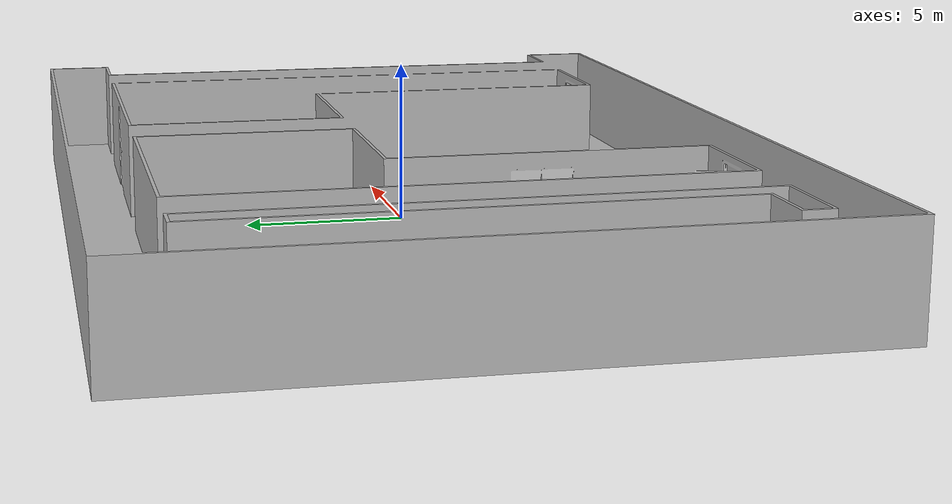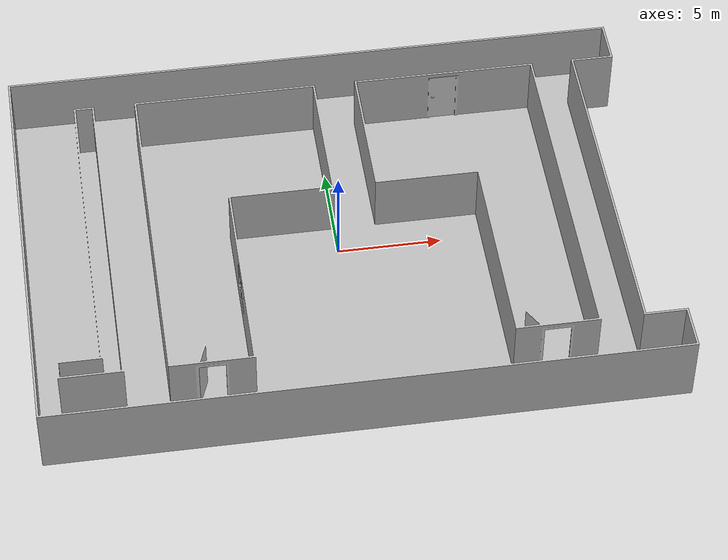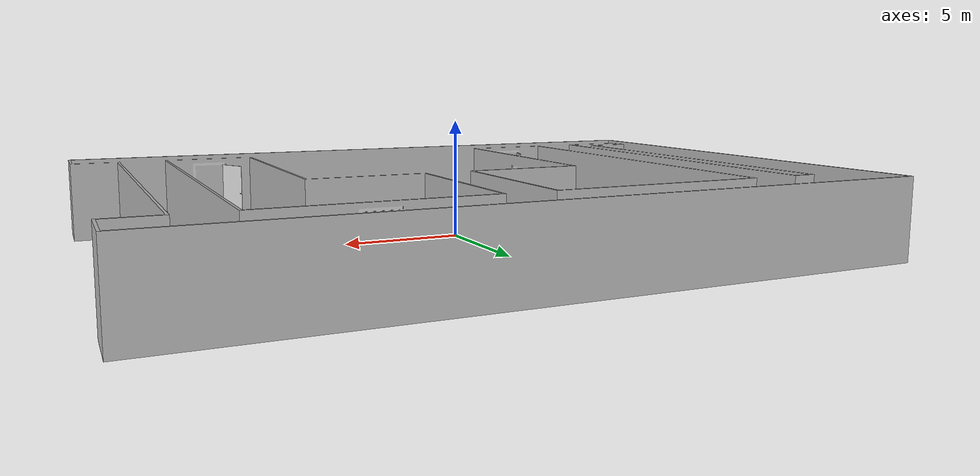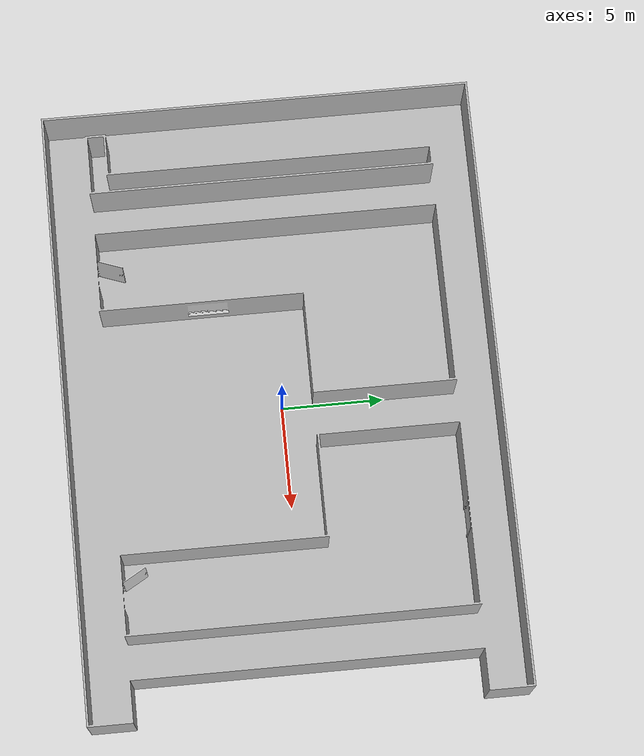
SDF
<?xml version='1.0'?>

<sdf version='1.6'>
  <model name="corridor">
    <static>true</static>
    <link name="corridor_link">
      <pose>0 0 0 0 0 1.57</pose>
      <collision name="corridor_collision">
        <geometry>
          <mesh>
            <scale>1 1 1</scale>
            <uri>file://corridor/meshes/collision/corridor.stl</uri>
          </mesh>
        </geometry>
        <surface>
          <bounce>
            <restitution_coefficient>0.1</restitution_coefficient>
            <threshold>0.005</threshold>
          </bounce>
        </surface>
      </collision>
      <visual name="corridor_visual">
        <geometry>
          <mesh>
            <scale>1 1 1</scale>
            <uri>file://corridor/meshes/visual/corridor.dae</uri>
          </mesh>
        </geometry>
      </visual>
    </link>
  </model>
</sdf>
